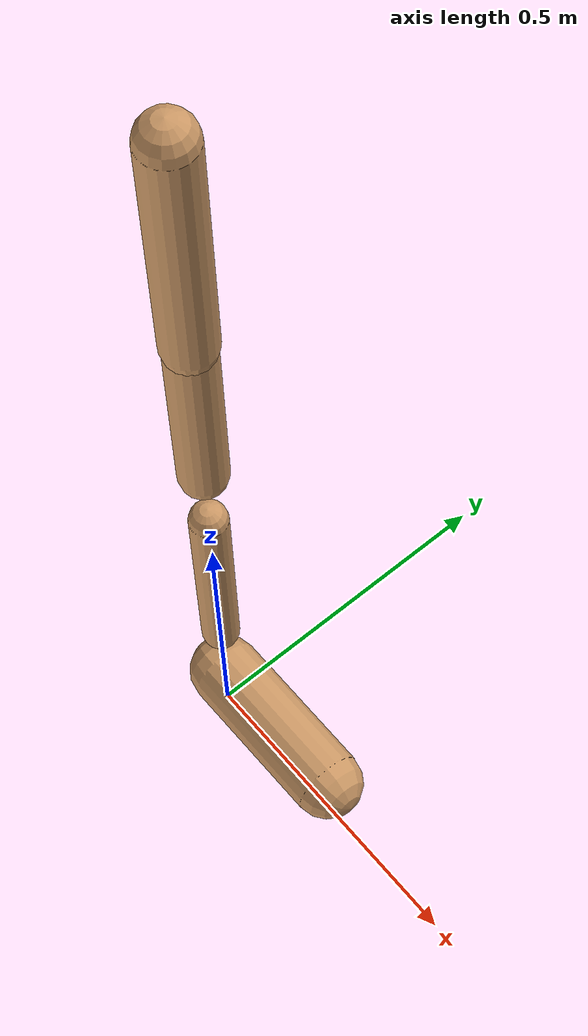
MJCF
<mujoco model="walker2d">
  <compiler angle="degree" coordinate="global" inertiafromgeom="true" />
  <default>
    <joint armature="0.01" damping=".1" limited="true" />
    <geom conaffinity="0" condim="3" contype="1" density="1000" friction="0.8 .1 .1" rgba="0.8 0.6 .4 1" />
  </default>
  <option integrator="RK4" timestep="0.002" />
  <worldbody>

    <body name="torso" pos="0 0 -0.2759272889664631">
      <joint armature="0" axis="1 0 0" damping="0" limited="false" name="ignorex" pos="0 0 0" stiffness="0" type="slide" />
      <joint armature="0" axis="0 0 1" damping="0" limited="false" name="ignorez" pos="0 0 0" ref="1.25" stiffness="0" type="slide" />
      <joint armature="0" axis="0 1 0" damping="0" limited="false" name="ignorey" pos="0 0 0" stiffness="0" type="hinge" />
      <geom fromto="0 0 1.45 0 0 1.05" name="torso_geom" size="0.03918235024897746" type="capsule" />
      <body name="thigh">
        <joint axis="0 -1 0" name="thigh_joint" pos="0 0 1.05" range="-150 0" type="hinge" />
        <geom fromto="0.0 0.0 1.05 0.0 0.0 0.7307024000367457" name="thigh_geom" size="0.03602902455355031" type="capsule" />
        <body name="leg" pos="0.0 0.0 0.13070240003674571">
          <joint axis="0 -1 0" name="leg_joint" pos="0 0 0.6" range="-150 0" type="hinge" />
          <geom fromto="0.0 0.0 0.6 0.0 0.0 0.24522488892971742" name="leg_geom" size="0.028823219642840247" type="capsule" />
          <body name="foot" pos="0.0 0.0 0.1452248889297174">
            <joint axis="0 -1 0" name="foot_joint" pos="0 0 0.1" range="-45 45" type="hinge" />
            <geom fromto="-0.0 0.0 0.09999999999999999 0.24724561261174038 0.0 0.09999999999999999" name="foot_geom" size="0.05544818257599842" type="capsule" />
          </body>
        </body>
      </body>

      <body name="thigh_left">
        <joint axis="0 -1 0" name="thigh_left_joint" pos="0 0 1.05" range="-150 0" type="hinge" />
        <geom fromto="0.0 0.0 1.05 0.0 0.0 0.7307024000367457" name="thigh_left_geom" rgba=".7 .3 .6 1" size="0.03602902455355031" type="capsule" />
        <body name="leg_left" pos="0.0 0.0 0.13070240003674571">
          <joint axis="0 -1 0" name="leg_left_joint" pos="0 0 0.6" range="-150 0" type="hinge" />
          <geom fromto="0.0 0.0 0.6 0.0 0.0 0.24522488892971742" name="leg_left_geom" rgba=".7 .3 .6 1" size="0.028823219642840247" type="capsule" />
          <body name="foot_left" pos="0.0 0.0 0.1452248889297174">
            <joint axis="0 -1 0" name="foot_left_joint" pos="0 0 0.1" range="-45 45" type="hinge" />
            <geom fromto="-0.0 0.0 0.09999999999999999 0.24724561261174038 0.0 0.09999999999999999" name="foot_left_geom" rgba=".7 .3 .6 1" size="0.05544818257599842" type="capsule" />
          </body>
        </body>
      </body>
    </body>
  </worldbody>
  <actuator>

    <motor ctrllimited="true" ctrlrange="-1.0 1.0" gear="100" joint="thigh_joint" />
    <motor ctrllimited="true" ctrlrange="-1.0 1.0" gear="100" joint="leg_joint" />
    <motor ctrllimited="true" ctrlrange="-1.0 1.0" gear="100" joint="foot_joint" />
    <motor ctrllimited="true" ctrlrange="-1.0 1.0" gear="100" joint="thigh_left_joint" />
    <motor ctrllimited="true" ctrlrange="-1.0 1.0" gear="100" joint="leg_left_joint" />
    <motor ctrllimited="true" ctrlrange="-1.0 1.0" gear="100" joint="foot_left_joint" />

  </actuator>
</mujoco>
